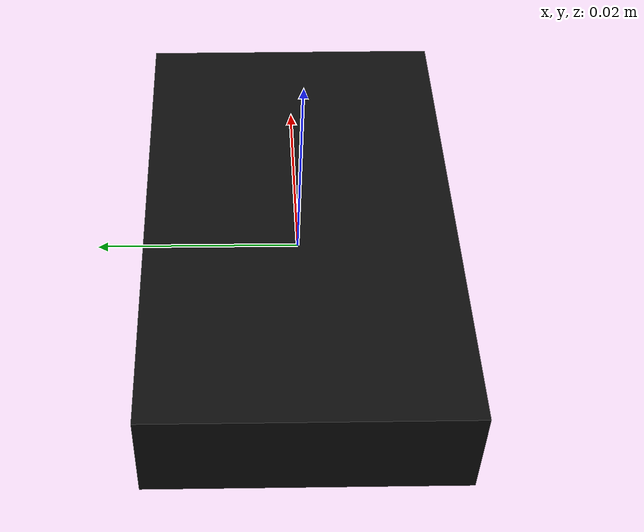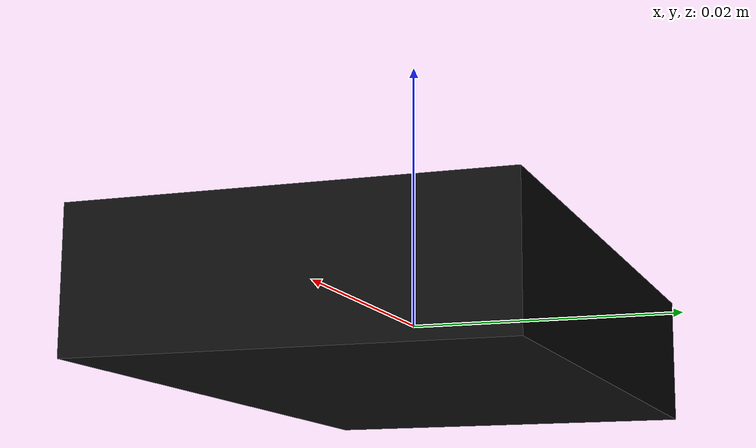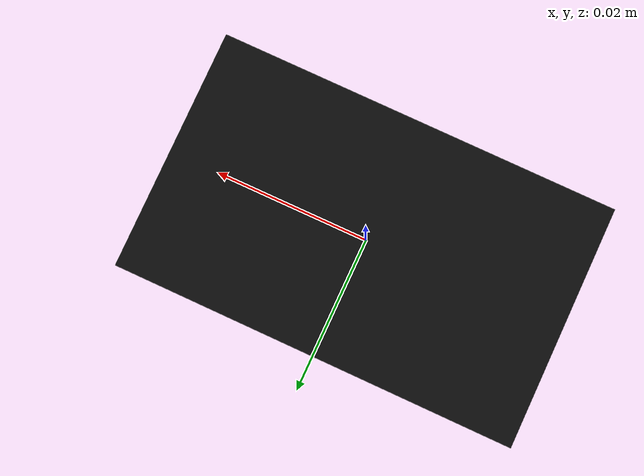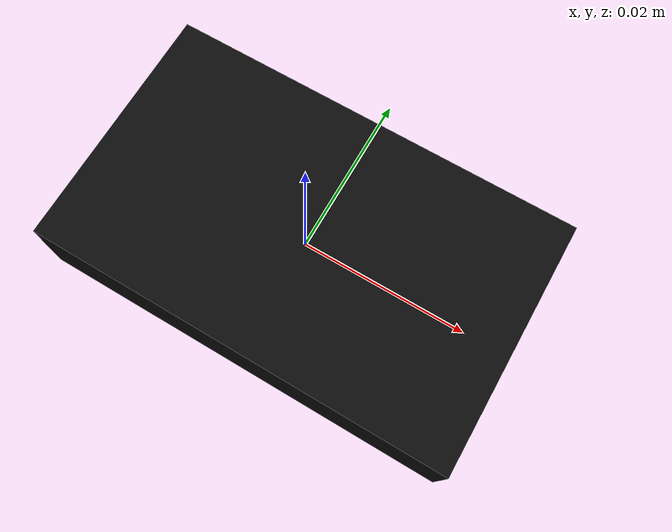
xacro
<?xml version="1.0"?>
<robot name="jetpilot_bridge_vehicle" xmlns:xacro="http://ros.org/wiki/xacro">

  <xacro:arg name="base_frame" default="base_link" />
  <xacro:arg name="camera_frame" default="camera_link" />

  <xacro:arg name="camera_x" default="0.0" />
  <xacro:arg name="camera_y" default="0.0" />
  <xacro:arg name="camera_z" default="0.0" />
  <xacro:arg name="camera_roll" default="0.0" />
  <xacro:arg name="camera_pitch" default="0.0" />
  <xacro:arg name="camera_yaw" default="0.0" />

  <link name="$(arg base_frame)" />
  <link name="$(arg camera_frame)">
    <visual>
      <geometry>
        <box size="0.05 0.03 0.01" />
      </geometry>
      <material name="mount_black">
        <color rgba="0.05 0.05 0.05 1.0" />
      </material>
    </visual>
  </link>

  <joint name="$(arg base_frame)_to_$(arg camera_frame)" type="fixed">
    <parent link="$(arg base_frame)" />
    <child link="$(arg camera_frame)" />
    <origin
      xyz="$(arg camera_x) $(arg camera_y) $(arg camera_z)"
      rpy="$(arg camera_roll) $(arg camera_pitch) $(arg camera_yaw)" />
  </joint>
</robot>
